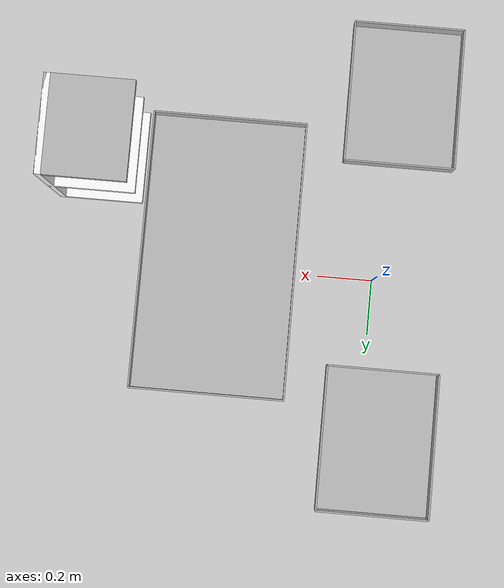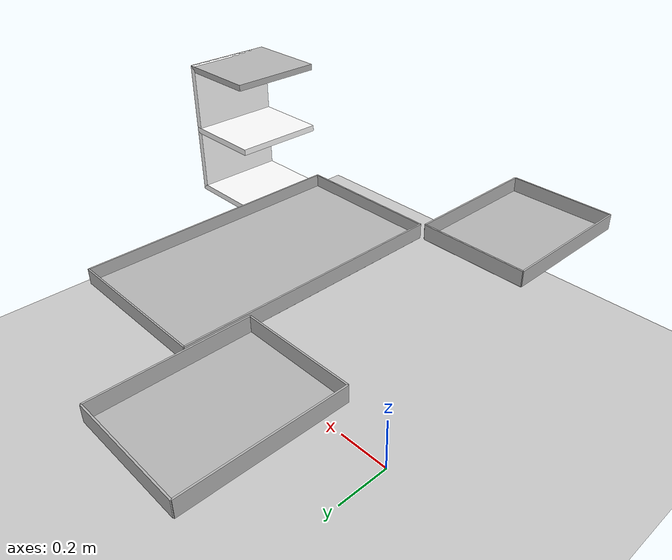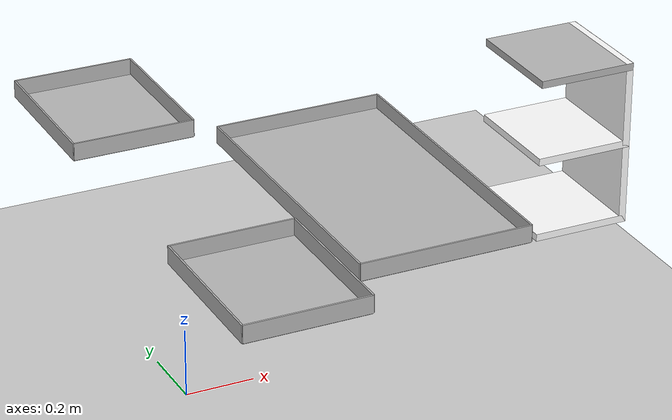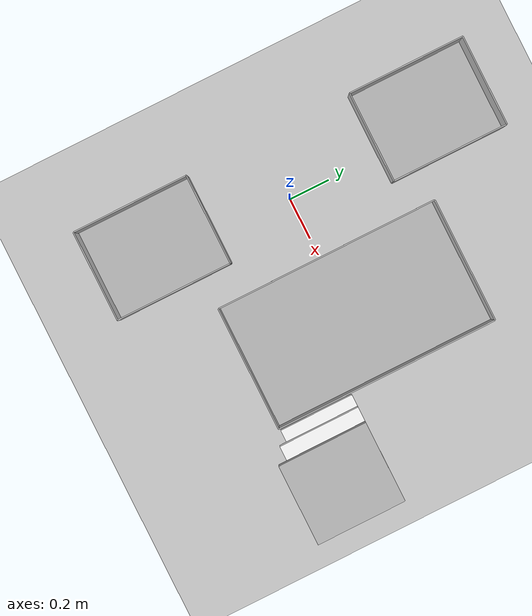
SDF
<sdf version="1.5">
 <world name="default">
  <scene><shadows>0</shadows></scene>
  <include><uri>model://ground_plane</uri></include>
  <include><uri>model://sun</uri></include>
  <scene><shadows>0</shadows></scene>
  <model name="storage_left">
   <static>true</static>
   <include><uri>model://storage_a_basket</uri></include>
   <pose>0 0.55 0.6 0 0 0</pose>
  </model>
  <model name="storage_right">
   <static>true</static>
   <include><uri>model://storage_b_basket</uri></include>
   <pose>0 -0.55 0.6 0 0 0</pose>
  </model>
  <model name="workspace_basket">
   <static>true</static>
   <include><uri>model://workspace_basket</uri></include>
   <pose>0.55 0 0.5 0 0 0</pose>
  </model>
  <model name="bookshelf">
   <static>true</static>
   <include><uri>model://bookshelf</uri></include>
   <pose>0.95 -0.3 0.5 0 0 -1.57</pose>
  </model>
  <plugin name="gazebo_ros_state" filename="libgazebo_ros_state.so">
   <ros>
    <namespace>/ros2_grasp</namespace>
    <argument>model_states:=model_states</argument>
    <argument>link_states:=link_states</argument>
   </ros>
   <update_rate>1.0</update_rate>
  </plugin>
  <plugin name="gazebo_ros_properties" filename="libgazebo_ros_properties.so">
   <ros><namespace>/ros2_grasp</namespace></ros>
  </plugin>
 </world>
</sdf>

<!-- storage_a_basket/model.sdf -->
<sdf version="1.7">
  <model name="storage_a_basket">
    <static>true</static>

    <!-- Bottom -->
    <link name="bottom">
      <pose>0 0 0.002500 0 0 0</pose>

      <visual name="bottom_visual">
        <geometry>
          <box>
            <size>0.35 0.45 0.005</size>
          </box>
        </geometry>
        <material>
          <script>
            <uri>model://storage_a_basket/materials/scripts</uri>
            <uri>model://storage_a_basket/materials/textures</uri>
            <name>Label/Storage_A</name>
          </script>
        </material>
      </visual>

      <collision name="bottom_collision">
        <geometry>
          <box>
            <size>0.35 0.45 0.005</size>
          </box>
        </geometry>
      </collision>
    </link>

    <!-- Front wall (+y) -->
    <link name="wall_front">
      <pose>0 0.225000 0.027500 0 0 0</pose>
      <visual name="front_visual">
        <geometry><box><size>0.35 0.005 0.05</size></box></geometry>
      </visual>
      <collision name="front_collision">
        <geometry><box><size>0.35 0.005 0.05</size></box></geometry>
      </collision>
    </link>

    <!-- Back wall (-y) -->
    <link name="wall_back">
      <pose>0 -0.225000 0.027500 0 0 0</pose>
      <visual name="back_visual">
        <geometry><box><size>0.35 0.005 0.05</size></box></geometry>
      </visual>
      <collision name="back_collision">
        <geometry><box><size>0.35 0.005 0.05</size></box></geometry>
      </collision>
    </link>

    <!-- Left wall (+x) -->
    <link name="wall_left">
      <pose>0.175000 0 0.027500 0 0 0</pose>
      <visual name="left_visual">
        <geometry><box><size>0.005 0.45 0.05</size></box></geometry>
      </visual>
      <collision name="left_collision">
        <geometry><box><size>0.005 0.45 0.05</size></box></geometry>
      </collision>
    </link>

    <!-- Right wall (-x) -->
    <link name="wall_right">
      <pose>-0.175000 0 0.027500 0 0 0</pose>
      <visual name="right_visual">
        <geometry><box><size>0.005 0.45 0.05</size></box></geometry>
      </visual>
      <collision name="right_collision">
        <geometry><box><size>0.005 0.45 0.05</size></box></geometry>
      </collision>
    </link>

  </model>
</sdf>

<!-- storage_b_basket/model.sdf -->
<sdf version="1.7">
  <model name="storage_b_basket">
    <static>true</static>

    <!-- Bottom -->
    <link name="bottom">
      <pose>0 0 0.002500 0 0 0</pose>

      <visual name="bottom_visual">
        <geometry>
          <box>
            <size>0.35 0.45 0.005</size>
          </box>
        </geometry>
        <material>
          <script>
            <uri>model://storage_b_basket/materials/scripts</uri>
            <uri>model://storage_b_basket/materials/textures</uri>
            <name>Label/Storage_B</name>
          </script>
        </material>
      </visual>

      <collision name="bottom_collision">
        <geometry>
          <box>
            <size>0.35 0.45 0.005</size>
          </box>
        </geometry>
      </collision>
    </link>

    <!-- Front wall (+y) -->
    <link name="wall_front">
      <pose>0 0.225000 0.027500 0 0 0</pose>
      <visual name="front_visual">
        <geometry><box><size>0.35 0.005 0.05</size></box></geometry>
      </visual>
      <collision name="front_collision">
        <geometry><box><size>0.35 0.005 0.05</size></box></geometry>
      </collision>
    </link>

    <!-- Back wall (-y) -->
    <link name="wall_back">
      <pose>0 -0.225000 0.027500 0 0 0</pose>
      <visual name="back_visual">
        <geometry><box><size>0.35 0.005 0.05</size></box></geometry>
      </visual>
      <collision name="back_collision">
        <geometry><box><size>0.35 0.005 0.05</size></box></geometry>
      </collision>
    </link>

    <!-- Left wall (+x) -->
    <link name="wall_left">
      <pose>0.175000 0 0.027500 0 0 0</pose>
      <visual name="left_visual">
        <geometry><box><size>0.005 0.45 0.05</size></box></geometry>
      </visual>
      <collision name="left_collision">
        <geometry><box><size>0.005 0.45 0.05</size></box></geometry>
      </collision>
    </link>

    <!-- Right wall (-x) -->
    <link name="wall_right">
      <pose>-0.175000 0 0.027500 0 0 0</pose>
      <visual name="right_visual">
        <geometry><box><size>0.005 0.45 0.05</size></box></geometry>
      </visual>
      <collision name="right_collision">
        <geometry><box><size>0.005 0.45 0.05</size></box></geometry>
      </collision>
    </link>

  </model>
</sdf>

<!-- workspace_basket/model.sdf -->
<sdf version="1.7">
  <model name="workspace_basket">
    <static>true</static>

    <!-- Bottom -->
    <link name="bottom">
      <pose>0 0 0.00500 0 0 0</pose>

      <visual name="bottom_visual">
        <geometry>
          <box>
            <size>0.5 0.9 0.01</size>
          </box>
        </geometry>
        <material>
          <script>
            <uri>model://workspace_basket/materials/scripts</uri>
            <uri>model://workspace_basket/materials/textures</uri>
            <name>Label/Work_Space</name>
          </script>
        </material>
      </visual>

      <collision name="bottom_collision">
        <geometry>
          <box>
            <size>0.5 0.9 0.01</size>
          </box>
        </geometry>
        <surface>
          <contact>
            <ode>
              <kp>1e+06</kp>
              <kd>1</kd>
              <min_depth>0.001</min_depth>
            </ode>
          </contact>
          <friction>
            <ode>
              <mu>1</mu>
              <mu2>1</mu2>
            </ode>
          </friction>
        </surface>
      </collision>
    </link>

    <!-- Front wall (+y) -->
    <link name="wall_front">
      <pose>0 0.450000 0.027500 0 0 0</pose>
      <visual name="front_visual">
        <geometry><box><size>0.5 0.005 0.05</size></box></geometry>
      </visual>
      <collision name="front_collision">
        <geometry><box><size>0.5 0.005 0.05</size></box></geometry>
        <surface>
          <contact>
            <ode>
              <kp>1e+06</kp>
              <kd>1</kd>
              <min_depth>0.001</min_depth>
            </ode>
          </contact>
          <friction>
            <ode>
              <mu>1</mu>
              <mu2>1</mu2>
            </ode>
          </friction>
        </surface>
      </collision>
    </link>

    <!-- Back wall (-y) -->
    <link name="wall_back">
      <pose>0 -0.450000 0.027500 0 0 0</pose>
      <visual name="back_visual">
        <geometry><box><size>0.5 0.005 0.05</size></box></geometry>
      </visual>
      <collision name="back_collision">
        <geometry><box><size>0.5 0.005 0.05</size></box></geometry>
        <surface>
          <contact>
            <ode>
              <kp>1e+06</kp>
              <kd>1</kd>
              <min_depth>0.001</min_depth>
            </ode>
          </contact>
          <friction>
            <ode>
              <mu>1</mu>
              <mu2>1</mu2>
            </ode>
          </friction>
        </surface>
      </collision>
    </link>

    <!-- Left wall (+x) -->
    <link name="wall_left">
      <pose>0.250000 0 0.027500 0 0 0</pose>
      <visual name="left_visual">
        <geometry><box><size>0.005 0.9 0.05</size></box></geometry>
      </visual>
      <collision name="left_collision">
        <geometry><box><size>0.005 0.9 0.05</size></box></geometry>
        <surface>
          <contact>
            <ode>
              <kp>1e+06</kp>
              <kd>1</kd>
              <min_depth>0.001</min_depth>
            </ode>
          </contact>
          <friction>
            <ode>
              <mu>1</mu>
              <mu2>1</mu2>
            </ode>
          </friction>
        </surface>
      </collision>
    </link>

    <!-- Right wall (-x) -->
    <link name="wall_right">
      <pose>-0.250000 0 0.027500 0 0 0</pose>
      <visual name="right_visual">
        <geometry><box><size>0.005 0.9 0.05</size></box></geometry>
      </visual>
      <collision name="right_collision">
        <geometry><box><size>0.005 0.9 0.05</size></box></geometry>
        <surface>
          <contact>
            <ode>
              <kp>1e+06</kp>
              <kd>1</kd>
              <min_depth>0.001</min_depth>
            </ode>
          </contact>
          <friction>
            <ode>
              <mu>1</mu>
              <mu2>1</mu2>
            </ode>
          </friction>
        </surface>
      </collision>
    </link>

  </model>
</sdf>

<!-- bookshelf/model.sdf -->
<sdf version="1.7">
  <model name="bookshelf">
    <static>true</static>
    <link name="link">

      <visual name="base_visual">
        <pose>0 0 0.01 0 0 0</pose> <geometry>
          <box>
            <size>0.3 0.27 0.02</size>
          </box>
        </geometry>
        <material>
          <ambient>1 1 1 1</ambient>
          <diffuse>1 1 1 1</diffuse>
        </material>
      </visual>
      <collision name="base_collision">
        <pose>0 0 0.01 0 0 0</pose>
        <geometry>
          <box>
            <size>0.3 0.27 0.02</size>
          </box>
        </geometry>
      </collision>

      <visual name="middle_visual">
        <pose>0 0 0.23 0 0 0</pose>
        <geometry>
          <box>
            <size>0.3 0.27 0.02</size>
          </box>
        </geometry>
        <material>
          <ambient>1 1 1 1</ambient>
          <diffuse>1 1 1 1</diffuse>
        </material>
      </visual>
      <collision name="middle_collision">
        <pose>0 0 0.23 0 0 0</pose>
        <geometry>
          <box>
            <size>0.3 0.27 0.02</size>
          </box>
        </geometry>
      </collision>

<visual name="top_visual">
        <pose>0 0 0.45 0 0 0</pose>
        <geometry>
          <box>
            <size>0.3 0.27 0.02</size>
          </box>
        </geometry>
        <material>
          <script>
            <uri>model://bookshelf/materials/scripts</uri>
            <uri>model://bookshelf/materials/textures</uri>
            <name>Bookshelf/Label</name>
          </script>
        </material>
      </visual>
      <collision name="top_collision">
        <pose>0 0 0.45 0 0 0</pose>
        <geometry>
          <box>
            <size>0.3 0.27 0.02</size>
          </box>
        </geometry>
      </collision>

      <visual name="back_visual">
        <pose>0 0.125 0.23 0 0 0</pose>
        <geometry>
          <box>
            <size>0.3 0.02 0.46</size>
          </box>
        </geometry>
        <material>
          <ambient>1 1 1 1</ambient>
          <diffuse>1 1 1 1</diffuse>
        </material>
      </visual>
      <collision name="back_collision">
        <pose>0 0.125 0.23 0 0 0</pose>
        <geometry>
          <box>
            <size>0.3 0.02 0.46</size>
          </box>
        </geometry>
      </collision>

    </link>
  </model>
</sdf>
